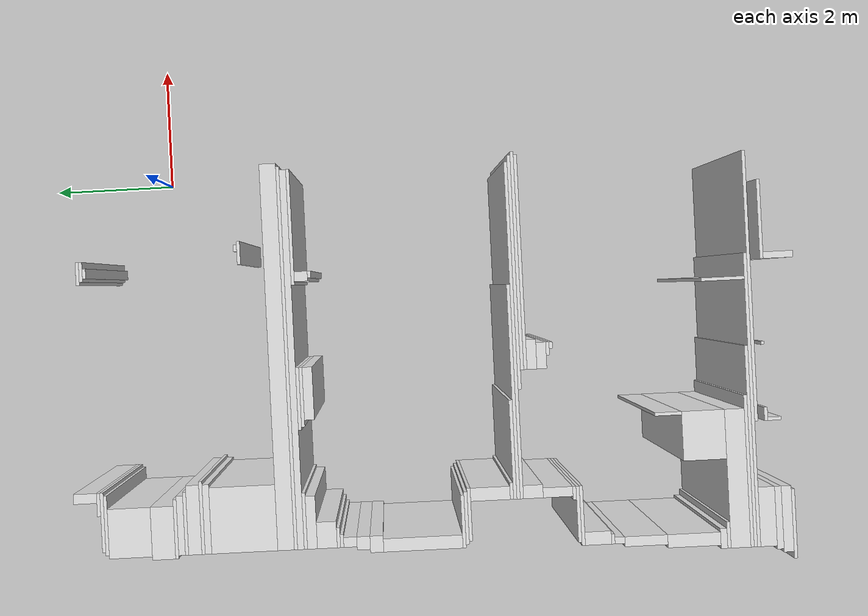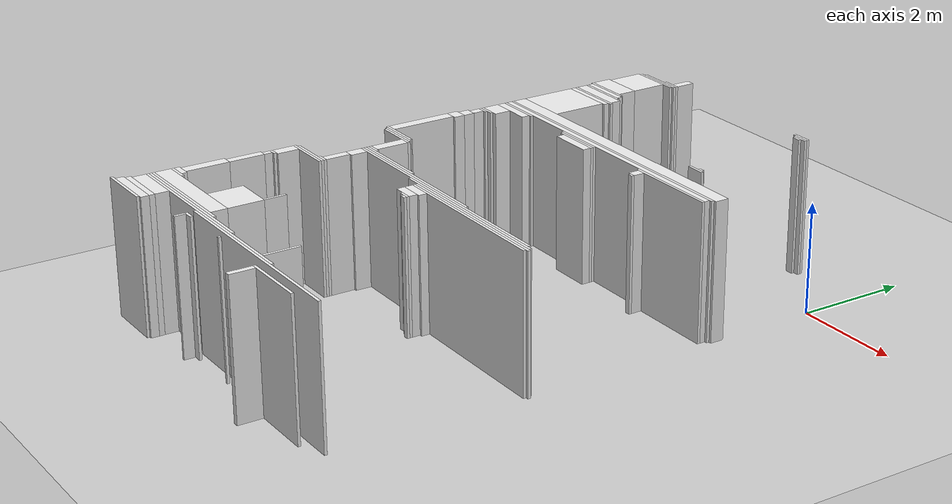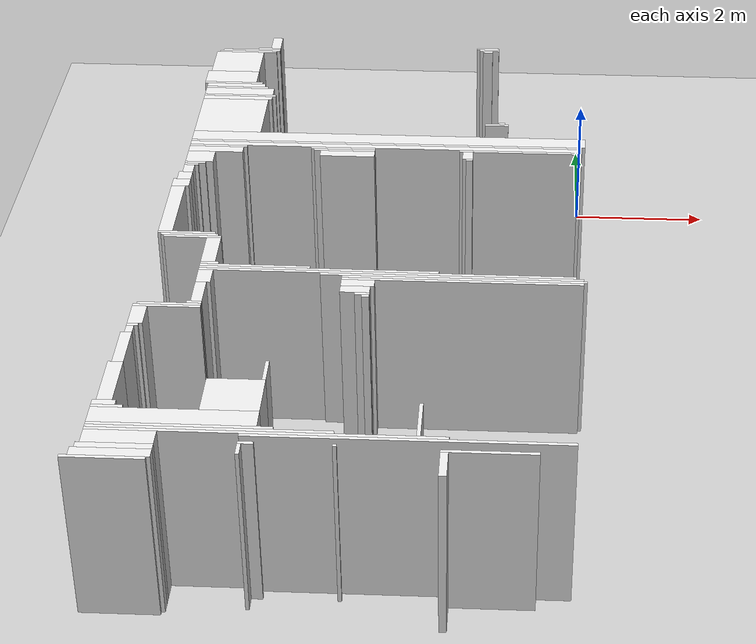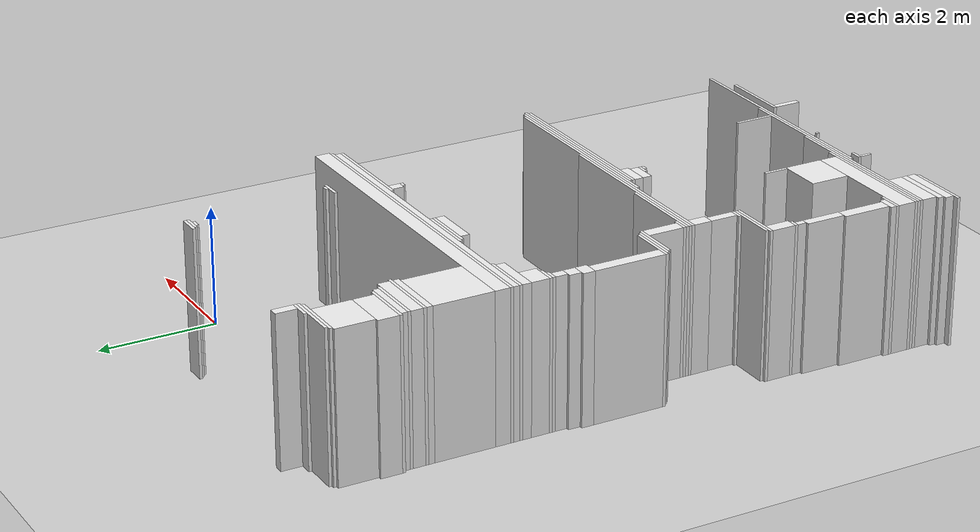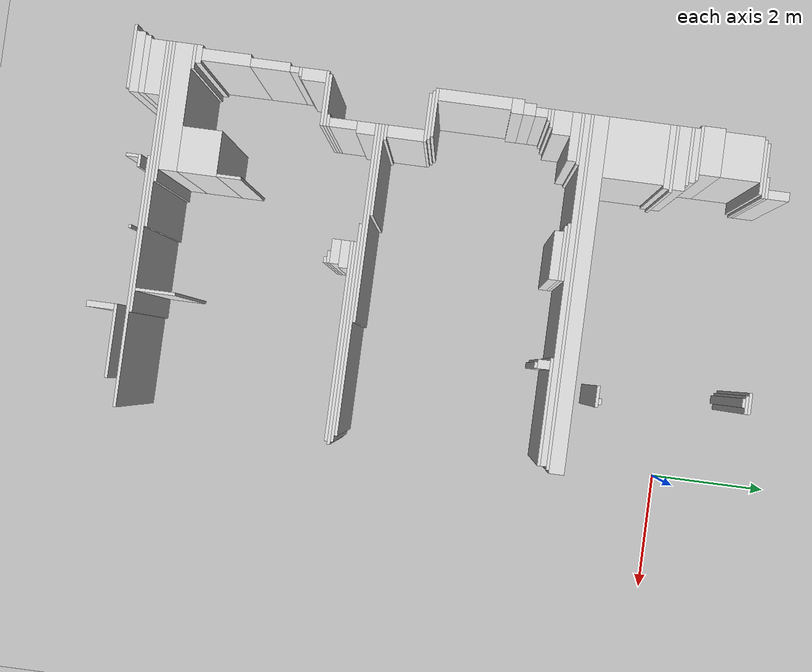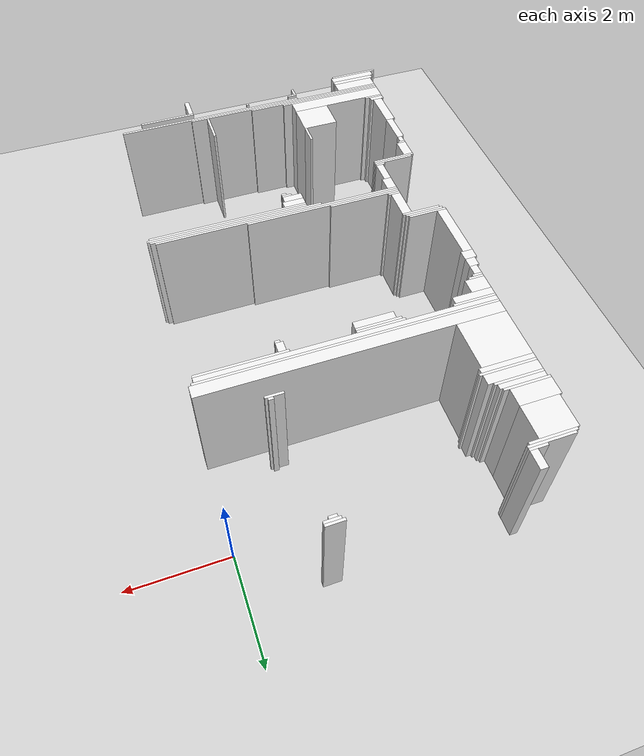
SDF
<sdf version="1.7">
 <world name="occupancy_map_world">
  <model name="ground_plane">
   <static>true</static>
   <link name="link">
    <collision name="collision">
     <geometry><plane><normal>0 0 1</normal><size>32.46 49.62000000000001</size></plane></geometry>
    </collision>
    <visual name="visual">
     <geometry><plane><normal>0 0 1</normal><size>32.46 49.62000000000001</size></plane></geometry>
     <material>
      <script><uri>file://media/materials/scripts/gazebo.material</uri><name>Gazebo/Grey</name></script>
     </material>
    </visual>
   </link>
  </model>
  <model name="wall_80">
   <static>true</static>
   <pose>-5.099999999999998 -5.399999999999999 1.25 0 0 0.0</pose>
   <link name="link">
    <collision name="collision"><geometry><box><size>0.25 0.05 2.5</size></box></geometry></collision>
    <visual name="visual">
     <geometry><box><size>0.25 0.05 2.5</size></box></geometry>
     <material>
      <script><uri>file://media/materials/scripts/gazebo.material</uri><name>Gazebo/White</name></script>
     </material>
    </visual>
   </link>
  </model>
  <model name="wall_82">
   <static>true</static>
   <pose>-5.124999999999998 -5.074999999999999 1.25 0 0 0.0</pose>
   <link name="link">
    <collision name="collision">
     <geometry><box><size>0.2 0.6000000000000001 2.5</size></box></geometry>
    </collision>
    <visual name="visual">
     <geometry><box><size>0.2 0.6000000000000001 2.5</size></box></geometry>
     <material>
      <script><uri>file://media/materials/scripts/gazebo.material</uri><name>Gazebo/White</name></script>
     </material>
    </visual>
   </link>
  </model>
  <model name="wall_83">
   <static>true</static>
   <pose>-5.124999999999998 -5.725 1.25 0 0 0.0</pose>
   <link name="link">
    <collision name="collision">
     <geometry><box><size>0.2 0.30000000000000004 2.5</size></box></geometry>
    </collision>
    <visual name="visual">
     <geometry><box><size>0.2 0.30000000000000004 2.5</size></box></geometry>
     <material>
      <script><uri>file://media/materials/scripts/gazebo.material</uri><name>Gazebo/White</name></script>
     </material>
    </visual>
   </link>
  </model>
  <model name="wall_417">
   <static>true</static>
   <pose>-4.899999999999999 1.0500000000000007 1.25 0 0 0.0</pose>
   <link name="link">
    <collision name="collision">
     <geometry><box><size>0.15000000000000002 0.35000000000000003 2.5</size></box></geometry>
    </collision>
    <visual name="visual">
     <geometry><box><size>0.15000000000000002 0.35000000000000003 2.5</size></box></geometry>
     <material>
      <script><uri>file://media/materials/scripts/gazebo.material</uri><name>Gazebo/White</name></script>
     </material>
    </visual>
   </link>
  </model>
  <model name="wall_422">
   <static>true</static>
   <pose>-1.4999999999999964 1.0 1.25 0 0 0.0</pose>
   <link name="link">
    <collision name="collision">
     <geometry><box><size>0.35000000000000003 0.05 2.5</size></box></geometry>
    </collision>
    <visual name="visual">
     <geometry><box><size>0.35000000000000003 0.05 2.5</size></box></geometry>
     <material>
      <script><uri>file://media/materials/scripts/gazebo.material</uri><name>Gazebo/White</name></script>
     </material>
    </visual>
   </link>
  </model>
  <model name="wall_423">
   <static>true</static>
   <pose>-1.4749999999999979 0.9500000000000028 1.25 0 0 0.0</pose>
   <link name="link">
    <collision name="collision">
     <geometry><box><size>0.30000000000000004 0.05 2.5</size></box></geometry>
    </collision>
    <visual name="visual">
     <geometry><box><size>0.30000000000000004 0.05 2.5</size></box></geometry>
     <material>
      <script><uri>file://media/materials/scripts/gazebo.material</uri><name>Gazebo/White</name></script>
     </material>
    </visual>
   </link>
  </model>
  <model name="wall_425">
   <static>true</static>
   <pose>-1.4999999999999964 0.9000000000000021 1.25 0 0 0.0</pose>
   <link name="link">
    <collision name="collision">
     <geometry><box><size>0.15000000000000002 0.05 2.5</size></box></geometry>
    </collision>
    <visual name="visual">
     <geometry><box><size>0.15000000000000002 0.05 2.5</size></box></geometry>
     <material>
      <script><uri>file://media/materials/scripts/gazebo.material</uri><name>Gazebo/White</name></script>
     </material>
    </visual>
   </link>
  </model>
  <model name="wall_427">
   <static>true</static>
   <pose>-4.999999999999998 0.8500000000000014 1.25 0 0 0.0</pose>
   <link name="link">
    <collision name="collision">
     <geometry><box><size>0.35000000000000003 0.05 2.5</size></box></geometry>
    </collision>
    <visual name="visual">
     <geometry><box><size>0.35000000000000003 0.05 2.5</size></box></geometry>
     <material>
      <script><uri>file://media/materials/scripts/gazebo.material</uri><name>Gazebo/White</name></script>
     </material>
    </visual>
   </link>
  </model>
  <model name="wall_428">
   <static>true</static>
   <pose>-5.274999999999999 0.8000000000000007 1.25 0 0 0.0</pose>
   <link name="link">
    <collision name="collision"><geometry><box><size>0.9 0.05 2.5</size></box></geometry></collision>
    <visual name="visual">
     <geometry><box><size>0.9 0.05 2.5</size></box></geometry>
     <material>
      <script><uri>file://media/materials/scripts/gazebo.material</uri><name>Gazebo/White</name></script>
     </material>
    </visual>
   </link>
  </model>
  <model name="wall_429">
   <static>true</static>
   <pose>-5.3249999999999975 0.75 1.25 0 0 0.0</pose>
   <link name="link">
    <collision name="collision"><geometry><box><size>0.9 0.05 2.5</size></box></geometry></collision>
    <visual name="visual">
     <geometry><box><size>0.9 0.05 2.5</size></box></geometry>
     <material>
      <script><uri>file://media/materials/scripts/gazebo.material</uri><name>Gazebo/White</name></script>
     </material>
    </visual>
   </link>
  </model>
  <model name="wall_431">
   <static>true</static>
   <pose>-5.4499999999999975 0.40000000000000213 1.25 0 0 0.0</pose>
   <link name="link">
    <collision name="collision"><geometry><box><size>0.75 0.65 2.5</size></box></geometry></collision>
    <visual name="visual">
     <geometry><box><size>0.75 0.65 2.5</size></box></geometry>
     <material>
      <script><uri>file://media/materials/scripts/gazebo.material</uri><name>Gazebo/White</name></script>
     </material>
    </visual>
   </link>
  </model>
  <model name="wall_435">
   <static>true</static>
   <pose>-5.474999999999998 -0.09999999999999787 1.25 0 0 0.0</pose>
   <link name="link">
    <collision name="collision">
     <geometry><box><size>0.8 0.35000000000000003 2.5</size></box></geometry>
    </collision>
    <visual name="visual">
     <geometry><box><size>0.8 0.35000000000000003 2.5</size></box></geometry>
     <material>
      <script><uri>file://media/materials/scripts/gazebo.material</uri><name>Gazebo/White</name></script>
     </material>
    </visual>
   </link>
  </model>
  <model name="wall_436">
   <static>true</static>
   <pose>-5.474999999999998 -4.699999999999999 1.25 0 0 0.0</pose>
   <link name="link">
    <collision name="collision"><geometry><box><size>0.8 0.05 2.5</size></box></geometry></collision>
    <visual name="visual">
     <geometry><box><size>0.8 0.05 2.5</size></box></geometry>
     <material>
      <script><uri>file://media/materials/scripts/gazebo.material</uri><name>Gazebo/White</name></script>
     </material>
    </visual>
   </link>
  </model>
  <model name="wall_443">
   <static>true</static>
   <pose>-5.424999999999997 -0.29999999999999716 1.25 0 0 0.0</pose>
   <link name="link">
    <collision name="collision"><geometry><box><size>0.9 0.05 2.5</size></box></geometry></collision>
    <visual name="visual">
     <geometry><box><size>0.9 0.05 2.5</size></box></geometry>
     <material>
      <script><uri>file://media/materials/scripts/gazebo.material</uri><name>Gazebo/White</name></script>
     </material>
    </visual>
   </link>
  </model>
  <model name="wall_446">
   <static>true</static>
   <pose>-5.374999999999998 -0.375 1.25 0 0 0.0</pose>
   <link name="link">
    <collision name="collision"><geometry><box><size>0.9 0.1 2.5</size></box></geometry></collision>
    <visual name="visual">
     <geometry><box><size>0.9 0.1 2.5</size></box></geometry>
     <material>
      <script><uri>file://media/materials/scripts/gazebo.material</uri><name>Gazebo/White</name></script>
     </material>
    </visual>
   </link>
  </model>
  <model name="wall_447">
   <static>true</static>
   <pose>-5.349999999999998 -0.4499999999999993 1.25 0 0 0.0</pose>
   <link name="link">
    <collision name="collision">
     <geometry><box><size>0.9500000000000001 0.05 2.5</size></box></geometry>
    </collision>
    <visual name="visual">
     <geometry><box><size>0.9500000000000001 0.05 2.5</size></box></geometry>
     <material>
      <script><uri>file://media/materials/scripts/gazebo.material</uri><name>Gazebo/White</name></script>
     </material>
    </visual>
   </link>
  </model>
  <model name="wall_448">
   <static>true</static>
   <pose>-5.299999999999997 -0.5749999999999993 1.25 0 0 0.0</pose>
   <link name="link">
    <collision name="collision"><geometry><box><size>1.05 0.2 2.5</size></box></geometry></collision>
    <visual name="visual">
     <geometry><box><size>1.05 0.2 2.5</size></box></geometry>
     <material>
      <script><uri>file://media/materials/scripts/gazebo.material</uri><name>Gazebo/White</name></script>
     </material>
    </visual>
   </link>
  </model>
  <model name="wall_449">
   <static>true</static>
   <pose>-5.299999999999997 -0.7749999999999986 1.25 0 0 0.0</pose>
   <link name="link">
    <collision name="collision"><geometry><box><size>1.05 0.1 2.5</size></box></geometry></collision>
    <visual name="visual">
     <geometry><box><size>1.05 0.1 2.5</size></box></geometry>
     <material>
      <script><uri>file://media/materials/scripts/gazebo.material</uri><name>Gazebo/White</name></script>
     </material>
    </visual>
   </link>
  </model>
  <model name="wall_453">
   <static>true</static>
   <pose>-5.274999999999999 -0.6999999999999993 1.25 0 0 0.0</pose>
   <link name="link">
    <collision name="collision"><geometry><box><size>1.1 0.05 2.5</size></box></geometry></collision>
    <visual name="visual">
     <geometry><box><size>1.1 0.05 2.5</size></box></geometry>
     <material>
      <script><uri>file://media/materials/scripts/gazebo.material</uri><name>Gazebo/White</name></script>
     </material>
    </visual>
   </link>
  </model>
  <model name="wall_454">
   <static>true</static>
   <pose>-5.3249999999999975 -1.3249999999999993 1.25 0 0 0.0</pose>
   <link name="link">
    <collision name="collision"><geometry><box><size>1.0 1.0 2.5</size></box></geometry></collision>
    <visual name="visual">
     <geometry><box><size>1.0 1.0 2.5</size></box></geometry>
     <material>
      <script><uri>file://media/materials/scripts/gazebo.material</uri><name>Gazebo/White</name></script>
     </material>
    </visual>
   </link>
  </model>
  <model name="wall_456">
   <static>true</static>
   <pose>-1.2249999999999979 -1.3999999999999986 1.25 0 0 0.0</pose>
   <link name="link">
    <collision name="collision"><geometry><box><size>0.1 0.05 2.5</size></box></geometry></collision>
    <visual name="visual">
     <geometry><box><size>0.1 0.05 2.5</size></box></geometry>
     <material>
      <script><uri>file://media/materials/scripts/gazebo.material</uri><name>Gazebo/White</name></script>
     </material>
    </visual>
   </link>
  </model>
  <model name="wall_457">
   <static>true</static>
   <pose>-1.2999999999999972 -1.4499999999999993 1.25 0 0 0.0</pose>
   <link name="link">
    <collision name="collision">
     <geometry><box><size>0.35000000000000003 0.05 2.5</size></box></geometry>
    </collision>
    <visual name="visual">
     <geometry><box><size>0.35000000000000003 0.05 2.5</size></box></geometry>
     <material>
      <script><uri>file://media/materials/scripts/gazebo.material</uri><name>Gazebo/White</name></script>
     </material>
    </visual>
   </link>
  </model>
  <model name="wall_465">
   <static>true</static>
   <pose>-2.8999999999999986 -1.9499999999999993 1.25 0 0 0.0</pose>
   <link name="link">
    <collision name="collision">
     <geometry><box><size>5.8500000000000005 0.25 2.5</size></box></geometry>
    </collision>
    <visual name="visual">
     <geometry><box><size>5.8500000000000005 0.25 2.5</size></box></geometry>
     <material>
      <script><uri>file://media/materials/scripts/gazebo.material</uri><name>Gazebo/White</name></script>
     </material>
    </visual>
   </link>
  </model>
  <model name="wall_470">
   <static>true</static>
   <pose>-2.924999999999997 -2.099999999999998 1.25 0 0 0.0</pose>
   <link name="link">
    <collision name="collision">
     <geometry><box><size>5.800000000000001 0.05 2.5</size></box></geometry>
    </collision>
    <visual name="visual">
     <geometry><box><size>5.800000000000001 0.05 2.5</size></box></geometry>
     <material>
      <script><uri>file://media/materials/scripts/gazebo.material</uri><name>Gazebo/White</name></script>
     </material>
    </visual>
   </link>
  </model>
  <model name="wall_473">
   <static>true</static>
   <pose>-2.9499999999999975 -2.1750000000000007 1.25 0 0 0.0</pose>
   <link name="link">
    <collision name="collision"><geometry><box><size>5.75 0.1 2.5</size></box></geometry></collision>
    <visual name="visual">
     <geometry><box><size>5.75 0.1 2.5</size></box></geometry>
     <material>
      <script><uri>file://media/materials/scripts/gazebo.material</uri><name>Gazebo/White</name></script>
     </material>
    </visual>
   </link>
  </model>
  <model name="wall_476">
   <static>true</static>
   <pose>-5.399999999999999 -2.25 1.25 0 0 0.0</pose>
   <link name="link">
    <collision name="collision">
     <geometry><box><size>0.8500000000000001 0.05 2.5</size></box></geometry>
    </collision>
    <visual name="visual">
     <geometry><box><size>0.8500000000000001 0.05 2.5</size></box></geometry>
     <material>
      <script><uri>file://media/materials/scripts/gazebo.material</uri><name>Gazebo/White</name></script>
     </material>
    </visual>
   </link>
  </model>
  <model name="wall_477">
   <static>true</static>
   <pose>-3.549999999999997 -2.25 1.25 0 0 0.0</pose>
   <link name="link">
    <collision name="collision">
     <geometry><box><size>0.9500000000000001 0.05 2.5</size></box></geometry>
    </collision>
    <visual name="visual">
     <geometry><box><size>0.9500000000000001 0.05 2.5</size></box></geometry>
     <material>
      <script><uri>file://media/materials/scripts/gazebo.material</uri><name>Gazebo/White</name></script>
     </material>
    </visual>
   </link>
  </model>
  <model name="wall_478">
   <static>true</static>
   <pose>-0.9499999999999993 -2.25 1.25 0 0 0.0</pose>
   <link name="link">
    <collision name="collision"><geometry><box><size>1.75 0.05 2.5</size></box></geometry></collision>
    <visual name="visual">
     <geometry><box><size>1.75 0.05 2.5</size></box></geometry>
     <material>
      <script><uri>file://media/materials/scripts/gazebo.material</uri><name>Gazebo/White</name></script>
     </material>
    </visual>
   </link>
  </model>
  <model name="wall_480">
   <static>true</static>
   <pose>-5.424999999999997 -2.349999999999998 1.25 0 0 0.0</pose>
   <link name="link">
    <collision name="collision">
     <geometry><box><size>0.8 0.15000000000000002 2.5</size></box></geometry>
    </collision>
    <visual name="visual">
     <geometry><box><size>0.8 0.15000000000000002 2.5</size></box></geometry>
     <material>
      <script><uri>file://media/materials/scripts/gazebo.material</uri><name>Gazebo/White</name></script>
     </material>
    </visual>
   </link>
  </model>
  <model name="wall_481">
   <static>true</static>
   <pose>-5.424999999999997 -4.75 1.25 0 0 0.0</pose>
   <link name="link">
    <collision name="collision"><geometry><box><size>0.8 0.05 2.5</size></box></geometry></collision>
    <visual name="visual">
     <geometry><box><size>0.8 0.05 2.5</size></box></geometry>
     <material>
      <script><uri>file://media/materials/scripts/gazebo.material</uri><name>Gazebo/White</name></script>
     </material>
    </visual>
   </link>
  </model>
  <model name="wall_482">
   <static>true</static>
   <pose>-3.5249999999999986 -2.3000000000000007 1.25 0 0 0.0</pose>
   <link name="link">
    <collision name="collision"><geometry><box><size>0.9 0.05 2.5</size></box></geometry></collision>
    <visual name="visual">
     <geometry><box><size>0.9 0.05 2.5</size></box></geometry>
     <material>
      <script><uri>file://media/materials/scripts/gazebo.material</uri><name>Gazebo/White</name></script>
     </material>
    </visual>
   </link>
  </model>
  <model name="wall_483">
   <static>true</static>
   <pose>-1.6999999999999993 -2.375 1.25 0 0 0.0</pose>
   <link name="link">
    <collision name="collision">
     <geometry><box><size>0.15000000000000002 0.2 2.5</size></box></geometry>
    </collision>
    <visual name="visual">
     <geometry><box><size>0.15000000000000002 0.2 2.5</size></box></geometry>
     <material>
      <script><uri>file://media/materials/scripts/gazebo.material</uri><name>Gazebo/White</name></script>
     </material>
    </visual>
   </link>
  </model>
  <model name="wall_485">
   <static>true</static>
   <pose>-3.474999999999998 -2.3999999999999986 1.25 0 0 0.0</pose>
   <link name="link">
    <collision name="collision">
     <geometry><box><size>0.8 0.15000000000000002 2.5</size></box></geometry>
    </collision>
    <visual name="visual">
     <geometry><box><size>0.8 0.15000000000000002 2.5</size></box></geometry>
     <material>
      <script><uri>file://media/materials/scripts/gazebo.material</uri><name>Gazebo/White</name></script>
     </material>
    </visual>
   </link>
  </model>
  <model name="wall_490">
   <static>true</static>
   <pose>-5.624999999999998 -2.5749999999999993 1.25 0 0 0.0</pose>
   <link name="link">
    <collision name="collision">
     <geometry><box><size>0.4 0.30000000000000004 2.5</size></box></geometry>
    </collision>
    <visual name="visual">
     <geometry><box><size>0.4 0.30000000000000004 2.5</size></box></geometry>
     <material>
      <script><uri>file://media/materials/scripts/gazebo.material</uri><name>Gazebo/White</name></script>
     </material>
    </visual>
   </link>
  </model>
  <model name="wall_491">
   <static>true</static>
   <pose>-1.6749999999999972 -2.5 1.25 0 0 0.0</pose>
   <link name="link">
    <collision name="collision"><geometry><box><size>0.1 0.05 2.5</size></box></geometry></collision>
    <visual name="visual">
     <geometry><box><size>0.1 0.05 2.5</size></box></geometry>
     <material>
      <script><uri>file://media/materials/scripts/gazebo.material</uri><name>Gazebo/White</name></script>
     </material>
    </visual>
   </link>
  </model>
  <model name="wall_499">
   <static>true</static>
   <pose>-5.674999999999997 -2.75 1.25 0 0 0.0</pose>
   <link name="link">
    <collision name="collision">
     <geometry><box><size>0.30000000000000004 0.05 2.5</size></box></geometry>
    </collision>
    <visual name="visual">
     <geometry><box><size>0.30000000000000004 0.05 2.5</size></box></geometry>
     <material>
      <script><uri>file://media/materials/scripts/gazebo.material</uri><name>Gazebo/White</name></script>
     </material>
    </visual>
   </link>
  </model>
  <model name="wall_502">
   <static>true</static>
   <pose>-5.724999999999998 -2.8000000000000007 1.25 0 0 0.0</pose>
   <link name="link">
    <collision name="collision"><geometry><box><size>0.2 0.05 2.5</size></box></geometry></collision>
    <visual name="visual">
     <geometry><box><size>0.2 0.05 2.5</size></box></geometry>
     <material>
      <script><uri>file://media/materials/scripts/gazebo.material</uri><name>Gazebo/White</name></script>
     </material>
    </visual>
   </link>
  </model>
  <model name="wall_504">
   <static>true</static>
   <pose>-5.749999999999998 -2.9250000000000007 1.25 0 0 0.0</pose>
   <link name="link">
    <collision name="collision">
     <geometry><box><size>0.15000000000000002 0.2 2.5</size></box></geometry>
    </collision>
    <visual name="visual">
     <geometry><box><size>0.15000000000000002 0.2 2.5</size></box></geometry>
     <material>
      <script><uri>file://media/materials/scripts/gazebo.material</uri><name>Gazebo/White</name></script>
     </material>
    </visual>
   </link>
  </model>
  <model name="wall_512">
   <static>true</static>
   <pose>-5.774999999999999 -3.125 1.25 0 0 0.0</pose>
   <link name="link">
    <collision name="collision"><geometry><box><size>0.2 0.2 2.5</size></box></geometry></collision>
    <visual name="visual">
     <geometry><box><size>0.2 0.2 2.5</size></box></geometry>
     <material>
      <script><uri>file://media/materials/scripts/gazebo.material</uri><name>Gazebo/White</name></script>
     </material>
    </visual>
   </link>
  </model>
  <model name="wall_524">
   <static>true</static>
   <pose>-5.799999999999997 -3.3249999999999993 1.25 0 0 0.0</pose>
   <link name="link">
    <collision name="collision"><geometry><box><size>0.25 0.2 2.5</size></box></geometry></collision>
    <visual name="visual">
     <geometry><box><size>0.25 0.2 2.5</size></box></geometry>
     <material>
      <script><uri>file://media/materials/scripts/gazebo.material</uri><name>Gazebo/White</name></script>
     </material>
    </visual>
   </link>
  </model>
  <model name="wall_527">
   <static>true</static>
   <pose>-5.8249999999999975 -4.024999999999999 1.25 0 0 0.0</pose>
   <link name="link">
    <collision name="collision">
     <geometry><box><size>0.2 1.2000000000000002 2.5</size></box></geometry>
    </collision>
    <visual name="visual">
     <geometry><box><size>0.2 1.2000000000000002 2.5</size></box></geometry>
     <material>
      <script><uri>file://media/materials/scripts/gazebo.material</uri><name>Gazebo/White</name></script>
     </material>
    </visual>
   </link>
  </model>
  <model name="wall_529">
   <static>true</static>
   <pose>-5.524999999999999 -4.649999999999999 1.25 0 0 0.0</pose>
   <link name="link">
    <collision name="collision"><geometry><box><size>0.8 0.05 2.5</size></box></geometry></collision>
    <visual name="visual">
     <geometry><box><size>0.8 0.05 2.5</size></box></geometry>
     <material>
      <script><uri>file://media/materials/scripts/gazebo.material</uri><name>Gazebo/White</name></script>
     </material>
    </visual>
   </link>
  </model>
  <model name="wall_535">
   <static>true</static>
   <pose>-4.474999999999998 -5.449999999999999 1.25 0 0 0.0</pose>
   <link name="link">
    <collision name="collision"><geometry><box><size>1.5 0.05 2.5</size></box></geometry></collision>
    <visual name="visual">
     <geometry><box><size>1.5 0.05 2.5</size></box></geometry>
     <material>
      <script><uri>file://media/materials/scripts/gazebo.material</uri><name>Gazebo/White</name></script>
     </material>
    </visual>
   </link>
  </model>
  <model name="wall_536">
   <static>true</static>
   <pose>-3.599999999999998 -5.5 1.25 0 0 0.0</pose>
   <link name="link">
    <collision name="collision"><geometry><box><size>3.25 0.05 2.5</size></box></geometry></collision>
    <visual name="visual">
     <geometry><box><size>3.25 0.05 2.5</size></box></geometry>
     <material>
      <script><uri>file://media/materials/scripts/gazebo.material</uri><name>Gazebo/White</name></script>
     </material>
    </visual>
   </link>
  </model>
  <model name="wall_537">
   <static>true</static>
   <pose>-2.674999999999997 -5.549999999999999 1.25 0 0 0.0</pose>
   <link name="link">
    <collision name="collision">
     <geometry><box><size>5.1000000000000005 0.05 2.5</size></box></geometry>
    </collision>
    <visual name="visual">
     <geometry><box><size>5.1000000000000005 0.05 2.5</size></box></geometry>
     <material>
      <script><uri>file://media/materials/scripts/gazebo.material</uri><name>Gazebo/White</name></script>
     </material>
    </visual>
   </link>
  </model>
  <model name="wall_538">
   <static>true</static>
   <pose>-1.7999999999999972 -5.6 1.25 0 0 0.0</pose>
   <link name="link">
    <collision name="collision">
     <geometry><box><size>3.5500000000000003 0.05 2.5</size></box></geometry>
    </collision>
    <visual name="visual">
     <geometry><box><size>3.5500000000000003 0.05 2.5</size></box></geometry>
     <material>
      <script><uri>file://media/materials/scripts/gazebo.material</uri><name>Gazebo/White</name></script>
     </material>
    </visual>
   </link>
  </model>
  <model name="wall_539">
   <static>true</static>
   <pose>-1.6249999999999964 -5.649999999999999 1.25 0 0 0.0</pose>
   <link name="link">
    <collision name="collision">
     <geometry><box><size>3.3000000000000003 0.05 2.5</size></box></geometry>
    </collision>
    <visual name="visual">
     <geometry><box><size>3.3000000000000003 0.05 2.5</size></box></geometry>
     <material>
      <script><uri>file://media/materials/scripts/gazebo.material</uri><name>Gazebo/White</name></script>
     </material>
    </visual>
   </link>
  </model>
  <model name="wall_540">
   <static>true</static>
   <pose>-1.6499999999999986 -5.699999999999999 1.25 0 0 0.0</pose>
   <link name="link">
    <collision name="collision"><geometry><box><size>3.25 0.05 2.5</size></box></geometry></collision>
    <visual name="visual">
     <geometry><box><size>3.25 0.05 2.5</size></box></geometry>
     <material>
      <script><uri>file://media/materials/scripts/gazebo.material</uri><name>Gazebo/White</name></script>
     </material>
    </visual>
   </link>
  </model>
  <model name="wall_542">
   <static>true</static>
   <pose>-3.049999999999997 -5.799999999999999 1.25 0 0 0.0</pose>
   <link name="link">
    <collision name="collision">
     <geometry><box><size>0.45 0.15000000000000002 2.5</size></box></geometry>
    </collision>
    <visual name="visual">
     <geometry><box><size>0.45 0.15000000000000002 2.5</size></box></geometry>
     <material>
      <script><uri>file://media/materials/scripts/gazebo.material</uri><name>Gazebo/White</name></script>
     </material>
    </visual>
   </link>
  </model>
  <model name="wall_545">
   <static>true</static>
   <pose>-5.149999999999999 -6.1 1.25 0 0 0.0</pose>
   <link name="link">
    <collision name="collision">
     <geometry><box><size>0.15000000000000002 0.45 2.5</size></box></geometry>
    </collision>
    <visual name="visual">
     <geometry><box><size>0.15000000000000002 0.45 2.5</size></box></geometry>
     <material>
      <script><uri>file://media/materials/scripts/gazebo.material</uri><name>Gazebo/White</name></script>
     </material>
    </visual>
   </link>
  </model>
  <model name="wall_547">
   <static>true</static>
   <pose>-3.0749999999999975 -5.949999999999999 1.25 0 0 0.0</pose>
   <link name="link">
    <collision name="collision">
     <geometry><box><size>0.4 0.15000000000000002 2.5</size></box></geometry>
    </collision>
    <visual name="visual">
     <geometry><box><size>0.4 0.15000000000000002 2.5</size></box></geometry>
     <material>
      <script><uri>file://media/materials/scripts/gazebo.material</uri><name>Gazebo/White</name></script>
     </material>
    </visual>
   </link>
  </model>
  <model name="wall_550">
   <static>true</static>
   <pose>-2.974999999999998 -6.049999999999999 1.25 0 0 0.0</pose>
   <link name="link">
    <collision name="collision"><geometry><box><size>0.2 0.05 2.5</size></box></geometry></collision>
    <visual name="visual">
     <geometry><box><size>0.2 0.05 2.5</size></box></geometry>
     <material>
      <script><uri>file://media/materials/scripts/gazebo.material</uri><name>Gazebo/White</name></script>
     </material>
    </visual>
   </link>
  </model>
  <model name="wall_551">
   <static>true</static>
   <pose>-2.924999999999997 -6.1 1.25 0 0 0.0</pose>
   <link name="link">
    <collision name="collision"><geometry><box><size>0.1 0.05 2.5</size></box></geometry></collision>
    <visual name="visual">
     <geometry><box><size>0.1 0.05 2.5</size></box></geometry>
     <material>
      <script><uri>file://media/materials/scripts/gazebo.material</uri><name>Gazebo/White</name></script>
     </material>
    </visual>
   </link>
  </model>
  <model name="wall_553">
   <static>true</static>
   <pose>-5.174999999999997 -6.35 1.25 0 0 0.0</pose>
   <link name="link">
    <collision name="collision"><geometry><box><size>0.2 0.05 2.5</size></box></geometry></collision>
    <visual name="visual">
     <geometry><box><size>0.2 0.05 2.5</size></box></geometry>
     <material>
      <script><uri>file://media/materials/scripts/gazebo.material</uri><name>Gazebo/White</name></script>
     </material>
    </visual>
   </link>
  </model>
  <model name="wall_556">
   <static>true</static>
   <pose>-5.499999999999998 -6.399999999999999 1.25 0 0 0.0</pose>
   <link name="link">
    <collision name="collision">
     <geometry><box><size>0.8500000000000001 0.05 2.5</size></box></geometry>
    </collision>
    <visual name="visual">
     <geometry><box><size>0.8500000000000001 0.05 2.5</size></box></geometry>
     <material>
      <script><uri>file://media/materials/scripts/gazebo.material</uri><name>Gazebo/White</name></script>
     </material>
    </visual>
   </link>
  </model>
  <model name="wall_559">
   <static>true</static>
   <pose>-5.524999999999999 -6.449999999999999 1.25 0 0 0.0</pose>
   <link name="link">
    <collision name="collision"><geometry><box><size>0.9 0.05 2.5</size></box></geometry></collision>
    <visual name="visual">
     <geometry><box><size>0.9 0.05 2.5</size></box></geometry>
     <material>
      <script><uri>file://media/materials/scripts/gazebo.material</uri><name>Gazebo/White</name></script>
     </material>
    </visual>
   </link>
  </model>
  <model name="wall_562">
   <static>true</static>
   <pose>-5.874999999999998 -6.674999999999999 1.25 0 0 0.0</pose>
   <link name="link">
    <collision name="collision"><geometry><box><size>0.2 0.4 2.5</size></box></geometry></collision>
    <visual name="visual">
     <geometry><box><size>0.2 0.4 2.5</size></box></geometry>
     <material>
      <script><uri>file://media/materials/scripts/gazebo.material</uri><name>Gazebo/White</name></script>
     </material>
    </visual>
   </link>
  </model>
  <model name="wall_563">
   <static>true</static>
   <pose>-5.899999999999999 -6.899999999999999 1.25 0 0 0.0</pose>
   <link name="link">
    <collision name="collision">
     <geometry><box><size>0.15000000000000002 0.05 2.5</size></box></geometry>
    </collision>
    <visual name="visual">
     <geometry><box><size>0.15000000000000002 0.05 2.5</size></box></geometry>
     <material>
      <script><uri>file://media/materials/scripts/gazebo.material</uri><name>Gazebo/White</name></script>
     </material>
    </visual>
   </link>
  </model>
  <model name="wall_564">
   <static>true</static>
   <pose>-5.924999999999997 -7.0 1.25 0 0 0.0</pose>
   <link name="link">
    <collision name="collision">
     <geometry><box><size>0.1 0.15000000000000002 2.5</size></box></geometry>
    </collision>
    <visual name="visual">
     <geometry><box><size>0.1 0.15000000000000002 2.5</size></box></geometry>
     <material>
      <script><uri>file://media/materials/scripts/gazebo.material</uri><name>Gazebo/White</name></script>
     </material>
    </visual>
   </link>
  </model>
  <model name="wall_565">
   <static>true</static>
   <pose>-5.9499999999999975 -7.399999999999999 1.25 0 0 0.0</pose>
   <link name="link">
    <collision name="collision">
     <geometry><box><size>0.15000000000000002 0.65 2.5</size></box></geometry>
    </collision>
    <visual name="visual">
     <geometry><box><size>0.15000000000000002 0.65 2.5</size></box></geometry>
     <material>
      <script><uri>file://media/materials/scripts/gazebo.material</uri><name>Gazebo/White</name></script>
     </material>
    </visual>
   </link>
  </model>
  <model name="wall_567">
   <static>true</static>
   <pose>-4.049999999999997 -7.824999999999999 1.25 0 0 0.0</pose>
   <link name="link">
    <collision name="collision"><geometry><box><size>0.05 0.4 2.5</size></box></geometry></collision>
    <visual name="visual">
     <geometry><box><size>0.05 0.4 2.5</size></box></geometry>
     <material>
      <script><uri>file://media/materials/scripts/gazebo.material</uri><name>Gazebo/White</name></script>
     </material>
    </visual>
   </link>
  </model>
  <model name="wall_568">
   <static>true</static>
   <pose>-5.974999999999998 -8.125 1.25 0 0 0.0</pose>
   <link name="link">
    <collision name="collision"><geometry><box><size>0.2 0.8 2.5</size></box></geometry></collision>
    <visual name="visual">
     <geometry><box><size>0.2 0.8 2.5</size></box></geometry>
     <material>
      <script><uri>file://media/materials/scripts/gazebo.material</uri><name>Gazebo/White</name></script>
     </material>
    </visual>
   </link>
  </model>
  <model name="wall_570">
   <static>true</static>
   <pose>-4.399999999999999 -8.35 1.25 0 0 0.0</pose>
   <link name="link">
    <collision name="collision"><geometry><box><size>0.75 0.65 2.5</size></box></geometry></collision>
    <visual name="visual">
     <geometry><box><size>0.75 0.65 2.5</size></box></geometry>
     <material>
      <script><uri>file://media/materials/scripts/gazebo.material</uri><name>Gazebo/White</name></script>
     </material>
    </visual>
   </link>
  </model>
  <model name="wall_574">
   <static>true</static>
   <pose>-2.049999999999997 -8.75 1.25 0 0 0.0</pose>
   <link name="link">
    <collision name="collision"><geometry><box><size>0.05 0.65 2.5</size></box></geometry></collision>
    <visual name="visual">
     <geometry><box><size>0.05 0.65 2.5</size></box></geometry>
     <material>
      <script><uri>file://media/materials/scripts/gazebo.material</uri><name>Gazebo/White</name></script>
     </material>
    </visual>
   </link>
  </model>
  <model name="wall_576">
   <static>true</static>
   <pose>-5.974999999999998 -8.575 1.25 0 0 0.0</pose>
   <link name="link">
    <collision name="collision">
     <geometry><box><size>0.30000000000000004 0.1 2.5</size></box></geometry>
    </collision>
    <visual name="visual">
     <geometry><box><size>0.30000000000000004 0.1 2.5</size></box></geometry>
     <material>
      <script><uri>file://media/materials/scripts/gazebo.material</uri><name>Gazebo/White</name></script>
     </material>
    </visual>
   </link>
  </model>
  <model name="wall_579">
   <static>true</static>
   <pose>-5.924999999999997 -8.649999999999999 1.25 0 0 0.0</pose>
   <link name="link">
    <collision name="collision"><geometry><box><size>0.4 0.05 2.5</size></box></geometry></collision>
    <visual name="visual">
     <geometry><box><size>0.4 0.05 2.5</size></box></geometry>
     <material>
      <script><uri>file://media/materials/scripts/gazebo.material</uri><name>Gazebo/White</name></script>
     </material>
    </visual>
   </link>
  </model>
  <model name="wall_580">
   <static>true</static>
   <pose>-5.0749999999999975 -8.825 1.25 0 0 0.0</pose>
   <link name="link">
    <collision name="collision">
     <geometry><box><size>2.1 0.30000000000000004 2.5</size></box></geometry>
    </collision>
    <visual name="visual">
     <geometry><box><size>2.1 0.30000000000000004 2.5</size></box></geometry>
     <material>
      <script><uri>file://media/materials/scripts/gazebo.material</uri><name>Gazebo/White</name></script>
     </material>
    </visual>
   </link>
  </model>
  <model name="wall_583">
   <static>true</static>
   <pose>-4.974999999999998 -9.0 1.25 0 0 0.0</pose>
   <link name="link">
    <collision name="collision">
     <geometry><box><size>2.3000000000000003 0.05 2.5</size></box></geometry>
    </collision>
    <visual name="visual">
     <geometry><box><size>2.3000000000000003 0.05 2.5</size></box></geometry>
     <material>
      <script><uri>file://media/materials/scripts/gazebo.material</uri><name>Gazebo/White</name></script>
     </material>
    </visual>
   </link>
  </model>
  <model name="wall_584">
   <static>true</static>
   <pose>-4.599999999999998 -9.049999999999999 1.25 0 0 0.0</pose>
   <link name="link">
    <collision name="collision">
     <geometry><box><size>3.0500000000000003 0.05 2.5</size></box></geometry>
    </collision>
    <visual name="visual">
     <geometry><box><size>3.0500000000000003 0.05 2.5</size></box></geometry>
     <material>
      <script><uri>file://media/materials/scripts/gazebo.material</uri><name>Gazebo/White</name></script>
     </material>
    </visual>
   </link>
  </model>
  <model name="wall_585">
   <static>true</static>
   <pose>-3.8999999999999986 -9.1 1.25 0 0 0.0</pose>
   <link name="link">
    <collision name="collision"><geometry><box><size>4.45 0.05 2.5</size></box></geometry></collision>
    <visual name="visual">
     <geometry><box><size>4.45 0.05 2.5</size></box></geometry>
     <material>
      <script><uri>file://media/materials/scripts/gazebo.material</uri><name>Gazebo/White</name></script>
     </material>
    </visual>
   </link>
  </model>
  <model name="wall_586">
   <static>true</static>
   <pose>-5.674999999999997 -9.25 1.25 0 0 0.0</pose>
   <link name="link">
    <collision name="collision"><geometry><box><size>0.9 0.25 2.5</size></box></geometry></collision>
    <visual name="visual">
     <geometry><box><size>0.9 0.25 2.5</size></box></geometry>
     <material>
      <script><uri>file://media/materials/scripts/gazebo.material</uri><name>Gazebo/White</name></script>
     </material>
    </visual>
   </link>
  </model>
  <model name="wall_587">
   <static>true</static>
   <pose>-2.174999999999997 -9.149999999999999 1.25 0 0 0.0</pose>
   <link name="link">
    <collision name="collision">
     <geometry><box><size>4.1000000000000005 0.05 2.5</size></box></geometry>
    </collision>
    <visual name="visual">
     <geometry><box><size>4.1000000000000005 0.05 2.5</size></box></geometry>
     <material>
      <script><uri>file://media/materials/scripts/gazebo.material</uri><name>Gazebo/White</name></script>
     </material>
    </visual>
   </link>
  </model>
  <model name="wall_591">
   <static>true</static>
   <pose>-4.124999999999998 -9.299999999999999 1.25 0 0 0.0</pose>
   <link name="link">
    <collision name="collision"><geometry><box><size>0.2 0.05 2.5</size></box></geometry></collision>
    <visual name="visual">
     <geometry><box><size>0.2 0.05 2.5</size></box></geometry>
     <material>
      <script><uri>file://media/materials/scripts/gazebo.material</uri><name>Gazebo/White</name></script>
     </material>
    </visual>
   </link>
  </model>
  <model name="wall_592">
   <static>true</static>
   <pose>-3.049999999999997 -9.299999999999999 1.25 0 0 0.0</pose>
   <link name="link">
    <collision name="collision"><geometry><box><size>0.05 0.05 2.5</size></box></geometry></collision>
    <visual name="visual">
     <geometry><box><size>0.05 0.05 2.5</size></box></geometry>
     <material>
      <script><uri>file://media/materials/scripts/gazebo.material</uri><name>Gazebo/White</name></script>
     </material>
    </visual>
   </link>
  </model>
  <model name="wall_596">
   <static>true</static>
   <pose>-4.1999999999999975 -9.424999999999999 1.25 0 0 0.0</pose>
   <link name="link">
    <collision name="collision"><geometry><box><size>0.05 0.2 2.5</size></box></geometry></collision>
    <visual name="visual">
     <geometry><box><size>0.05 0.2 2.5</size></box></geometry>
     <material>
      <script><uri>file://media/materials/scripts/gazebo.material</uri><name>Gazebo/White</name></script>
     </material>
    </visual>
   </link>
  </model>
  <model name="wall_597">
   <static>true</static>
   <pose>-1.1749999999999972 -9.35 1.25 0 0 0.0</pose>
   <link name="link">
    <collision name="collision">
     <geometry><box><size>1.2000000000000002 0.05 2.5</size></box></geometry>
    </collision>
    <visual name="visual">
     <geometry><box><size>1.2000000000000002 0.05 2.5</size></box></geometry>
     <material>
      <script><uri>file://media/materials/scripts/gazebo.material</uri><name>Gazebo/White</name></script>
     </material>
    </visual>
   </link>
  </model>
  <model name="wall_599">
   <static>true</static>
   <pose>-5.6999999999999975 -9.424999999999999 1.25 0 0 0.0</pose>
   <link name="link">
    <collision name="collision">
     <geometry><box><size>0.9500000000000001 0.1 2.5</size></box></geometry>
    </collision>
    <visual name="visual">
     <geometry><box><size>0.9500000000000001 0.1 2.5</size></box></geometry>
     <material>
      <script><uri>file://media/materials/scripts/gazebo.material</uri><name>Gazebo/White</name></script>
     </material>
    </visual>
   </link>
  </model>
  <model name="wall_600">
   <static>true</static>
   <pose>-1.7249999999999979 -9.6 1.25 0 0 0.0</pose>
   <link name="link">
    <collision name="collision"><geometry><box><size>0.1 0.45 2.5</size></box></geometry></collision>
    <visual name="visual">
     <geometry><box><size>0.1 0.45 2.5</size></box></geometry>
     <material>
      <script><uri>file://media/materials/scripts/gazebo.material</uri><name>Gazebo/White</name></script>
     </material>
    </visual>
   </link>
  </model>
  <model name="wall_603">
   <static>true</static>
   <pose>-5.724999999999998 -9.549999999999999 1.25 0 0 0.0</pose>
   <link name="link">
    <collision name="collision">
     <geometry><box><size>1.0 0.15000000000000002 2.5</size></box></geometry>
    </collision>
    <visual name="visual">
     <geometry><box><size>1.0 0.15000000000000002 2.5</size></box></geometry>
     <material>
      <script><uri>file://media/materials/scripts/gazebo.material</uri><name>Gazebo/White</name></script>
     </material>
    </visual>
   </link>
  </model>
  <model name="wall_608">
   <static>true</static>
   <pose>-5.799999999999997 -9.649999999999999 1.25 0 0 0.0</pose>
   <link name="link">
    <collision name="collision"><geometry><box><size>1.05 0.05 2.5</size></box></geometry></collision>
    <visual name="visual">
     <geometry><box><size>1.05 0.05 2.5</size></box></geometry>
     <material>
      <script><uri>file://media/materials/scripts/gazebo.material</uri><name>Gazebo/White</name></script>
     </material>
    </visual>
   </link>
  </model>
  <model name="wall_733">
   <static>true</static>
   <pose>-4.1999999999999975 -9.424999999999999 1.25 0 0 0.0</pose>
   <link name="link">
    <collision name="collision"><geometry><box><size>0.05 0.2 2.5</size></box></geometry></collision>
    <visual name="visual">
     <geometry><box><size>0.05 0.2 2.5</size></box></geometry>
     <material>
      <script><uri>file://media/materials/scripts/gazebo.material</uri><name>Gazebo/White</name></script>
     </material>
    </visual>
   </link>
  </model>
  <model name="wall_734">
   <static>true</static>
   <pose>-4.049999999999997 -7.824999999999999 1.25 0 0 0.0</pose>
   <link name="link">
    <collision name="collision"><geometry><box><size>0.05 0.4 2.5</size></box></geometry></collision>
    <visual name="visual">
     <geometry><box><size>0.05 0.4 2.5</size></box></geometry>
     <material>
      <script><uri>file://media/materials/scripts/gazebo.material</uri><name>Gazebo/White</name></script>
     </material>
    </visual>
   </link>
  </model>
  <model name="wall_736">
   <static>true</static>
   <pose>-3.049999999999997 -9.299999999999999 1.25 0 0 0.0</pose>
   <link name="link">
    <collision name="collision"><geometry><box><size>0.05 0.05 2.5</size></box></geometry></collision>
    <visual name="visual">
     <geometry><box><size>0.05 0.05 2.5</size></box></geometry>
     <material>
      <script><uri>file://media/materials/scripts/gazebo.material</uri><name>Gazebo/White</name></script>
     </material>
    </visual>
   </link>
  </model>
  <model name="wall_739">
   <static>true</static>
   <pose>-2.049999999999997 -8.75 1.25 0 0 0.0</pose>
   <link name="link">
    <collision name="collision"><geometry><box><size>0.05 0.65 2.5</size></box></geometry></collision>
    <visual name="visual">
     <geometry><box><size>0.05 0.65 2.5</size></box></geometry>
     <material>
      <script><uri>file://media/materials/scripts/gazebo.material</uri><name>Gazebo/White</name></script>
     </material>
    </visual>
   </link>
  </model>
 </world>
</sdf>
